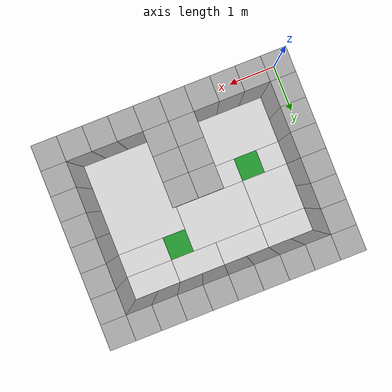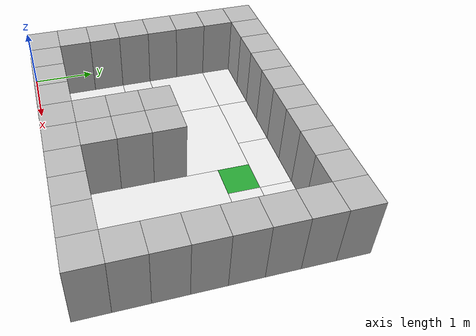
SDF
<sdf version="1.5">
  <model name="map">
    <static>1</static>
    <link name="map">
      <collision name="floor">
        <pose>2.5 2.0 -0.0625 0 0 0</pose>
        <geometry>
          <box>
            <size>5.0 4.0 0.125</size>
          </box>
        </geometry>
      </collision>
      <visual name="floor_0">
        <pose>1.25 1.0 -0.0625 0 0 0</pose>
        <geometry>
          <box>
            <size>1.5 1.0 0.125</size>
          </box>
        </geometry>
        <material>
          <script>
            <uri>file://media/materials/scripts/gazebo.material</uri>
            <name>Gazebo/White</name>
          </script>
        </material>
      </visual>
      <visual name="floor_1">
        <pose>1.0 3.25 -0.0625 0 0 0</pose>
        <geometry>
          <box>
            <size>1.0 0.5 0.125</size>
          </box>
        </geometry>
        <material>
          <script>
            <uri>file://media/materials/scripts/gazebo.material</uri>
            <name>Gazebo/White</name>
          </script>
        </material>
      </visual>
      <visual name="floor_2">
        <pose>2.0 3.25 -0.0625 0 0 0</pose>
        <geometry>
          <box>
            <size>1.0 0.5 0.125</size>
          </box>
        </geometry>
        <material>
          <script>
            <uri>file://media/materials/scripts/gazebo.material</uri>
            <name>Gazebo/White</name>
          </script>
        </material>
      </visual>
      <visual name="floor_3">
        <pose>3.0 3.25 -0.0625 0 0 0</pose>
        <geometry>
          <box>
            <size>1.0 0.5 0.125</size>
          </box>
        </geometry>
        <material>
          <script>
            <uri>file://media/materials/scripts/gazebo.material</uri>
            <name>Gazebo/White</name>
          </script>
        </material>
      </visual>
      <visual name="floor_4">
        <pose>4.0 3.25 -0.0625 0 0 0</pose>
        <geometry>
          <box>
            <size>1.0 0.5 0.125</size>
          </box>
        </geometry>
        <material>
          <script>
            <uri>file://media/materials/scripts/gazebo.material</uri>
            <name>Gazebo/White</name>
          </script>
        </material>
      </visual>
      <visual name="floor_5">
        <pose>3.75 1.5 -0.0625 0 0 0</pose>
        <geometry>
          <box>
            <size>1.5 2.0 0.125</size>
          </box>
        </geometry>
        <material>
          <script>
            <uri>file://media/materials/scripts/gazebo.material</uri>
            <name>Gazebo/White</name>
          </script>
        </material>
      </visual>
      <visual name="floor_6">
        <pose>1.0 2.5 -0.0625 0 0 0</pose>
        <geometry>
          <box>
            <size>1.0 1.0 0.125</size>
          </box>
        </geometry>
        <material>
          <script>
            <uri>file://media/materials/scripts/gazebo.material</uri>
            <name>Gazebo/White</name>
          </script>
        </material>
      </visual>
      <visual name="floor_7">
        <pose>2.25 2.5 -0.0625 0 0 0</pose>
        <geometry>
          <box>
            <size>1.5 1.0 0.125</size>
          </box>
        </geometry>
        <material>
          <script>
            <uri>file://media/materials/scripts/gazebo.material</uri>
            <name>Gazebo/White</name>
          </script>
        </material>
      </visual>
      <visual name="floor_8">
        <pose>1.75 1.75 -0.0625 0 0 0</pose>
        <geometry>
          <box>
            <size>0.5 0.5 0.125</size>
          </box>
        </geometry>
        <material>
          <script>
            <uri>file://media/materials/scripts/gazebo.material</uri>
            <name>Gazebo/White</name>
          </script>
        </material>
      </visual>
      <visual name="floor_9">
        <pose>0.75 1.75 -0.0625 0 0 0</pose>
        <geometry>
          <box>
            <size>0.5 0.5 0.125</size>
          </box>
        </geometry>
        <material>
          <script>
            <uri>file://media/materials/scripts/gazebo.material</uri>
            <name>Gazebo/White</name>
          </script>
        </material>
      </visual>
      <visual name="floor_10">
        <pose>4.0 2.75 -0.0625 0 0 0</pose>
        <geometry>
          <box>
            <size>1.0 0.5 0.125</size>
          </box>
        </geometry>
        <material>
          <script>
            <uri>file://media/materials/scripts/gazebo.material</uri>
            <name>Gazebo/White</name>
          </script>
        </material>
      </visual>
      <visual name="floor_target_0">
        <pose>1.25 1.75 -0.0625 0 0 0</pose>
        <geometry>
          <box>
            <size>0.5 0.5 0.125</size>
          </box>
        </geometry>
        <material>
          <script>
            <uri>file://media/materials/scripts/gazebo.material</uri>
            <name>Gazebo/Green</name>
          </script>
        </material>
      </visual>
      <visual name="floor_target_1">
        <pose>3.25 2.75 -0.0625 0 0 0</pose>
        <geometry>
          <box>
            <size>0.5 0.5 0.125</size>
          </box>
        </geometry>
        <material>
          <script>
            <uri>file://media/materials/scripts/gazebo.material</uri>
            <name>Gazebo/Green</name>
          </script>
        </material>
      </visual>
      <collision name="box_0_0">
        <pose>0.25 0.25 0.5 0 0 0</pose>
        <geometry>
          <box>
            <size>0.5 0.5 1.0</size>
          </box>
        </geometry>
      </collision>
      <visual name="box_0_0">
        <pose>0.25 0.25 0.5 0 0 0</pose>
        <geometry>
          <box>
            <size>0.5 0.5 1.0</size>
          </box>
        </geometry>
      </visual>
      <collision name="box_0_1">
        <pose>0.25 0.75 0.5 0 0 0</pose>
        <geometry>
          <box>
            <size>0.5 0.5 1.0</size>
          </box>
        </geometry>
      </collision>
      <visual name="box_0_1">
        <pose>0.25 0.75 0.5 0 0 0</pose>
        <geometry>
          <box>
            <size>0.5 0.5 1.0</size>
          </box>
        </geometry>
      </visual>
      <collision name="box_0_2">
        <pose>0.25 1.25 0.5 0 0 0</pose>
        <geometry>
          <box>
            <size>0.5 0.5 1.0</size>
          </box>
        </geometry>
      </collision>
      <visual name="box_0_2">
        <pose>0.25 1.25 0.5 0 0 0</pose>
        <geometry>
          <box>
            <size>0.5 0.5 1.0</size>
          </box>
        </geometry>
      </visual>
      <collision name="box_0_3">
        <pose>0.25 1.75 0.5 0 0 0</pose>
        <geometry>
          <box>
            <size>0.5 0.5 1.0</size>
          </box>
        </geometry>
      </collision>
      <visual name="box_0_3">
        <pose>0.25 1.75 0.5 0 0 0</pose>
        <geometry>
          <box>
            <size>0.5 0.5 1.0</size>
          </box>
        </geometry>
      </visual>
      <collision name="box_0_4">
        <pose>0.25 2.25 0.5 0 0 0</pose>
        <geometry>
          <box>
            <size>0.5 0.5 1.0</size>
          </box>
        </geometry>
      </collision>
      <visual name="box_0_4">
        <pose>0.25 2.25 0.5 0 0 0</pose>
        <geometry>
          <box>
            <size>0.5 0.5 1.0</size>
          </box>
        </geometry>
      </visual>
      <collision name="box_0_5">
        <pose>0.25 2.75 0.5 0 0 0</pose>
        <geometry>
          <box>
            <size>0.5 0.5 1.0</size>
          </box>
        </geometry>
      </collision>
      <visual name="box_0_5">
        <pose>0.25 2.75 0.5 0 0 0</pose>
        <geometry>
          <box>
            <size>0.5 0.5 1.0</size>
          </box>
        </geometry>
      </visual>
      <collision name="box_0_6">
        <pose>0.25 3.25 0.5 0 0 0</pose>
        <geometry>
          <box>
            <size>0.5 0.5 1.0</size>
          </box>
        </geometry>
      </collision>
      <visual name="box_0_6">
        <pose>0.25 3.25 0.5 0 0 0</pose>
        <geometry>
          <box>
            <size>0.5 0.5 1.0</size>
          </box>
        </geometry>
      </visual>
      <collision name="box_0_7">
        <pose>0.25 3.75 0.5 0 0 0</pose>
        <geometry>
          <box>
            <size>0.5 0.5 1.0</size>
          </box>
        </geometry>
      </collision>
      <visual name="box_0_7">
        <pose>0.25 3.75 0.5 0 0 0</pose>
        <geometry>
          <box>
            <size>0.5 0.5 1.0</size>
          </box>
        </geometry>
      </visual>
      <collision name="box_1_0">
        <pose>0.75 0.25 0.5 0 0 0</pose>
        <geometry>
          <box>
            <size>0.5 0.5 1.0</size>
          </box>
        </geometry>
      </collision>
      <visual name="box_1_0">
        <pose>0.75 0.25 0.5 0 0 0</pose>
        <geometry>
          <box>
            <size>0.5 0.5 1.0</size>
          </box>
        </geometry>
      </visual>
      <collision name="box_1_7">
        <pose>0.75 3.75 0.5 0 0 0</pose>
        <geometry>
          <box>
            <size>0.5 0.5 1.0</size>
          </box>
        </geometry>
      </collision>
      <visual name="box_1_7">
        <pose>0.75 3.75 0.5 0 0 0</pose>
        <geometry>
          <box>
            <size>0.5 0.5 1.0</size>
          </box>
        </geometry>
      </visual>
      <collision name="box_2_0">
        <pose>1.25 0.25 0.5 0 0 0</pose>
        <geometry>
          <box>
            <size>0.5 0.5 1.0</size>
          </box>
        </geometry>
      </collision>
      <visual name="box_2_0">
        <pose>1.25 0.25 0.5 0 0 0</pose>
        <geometry>
          <box>
            <size>0.5 0.5 1.0</size>
          </box>
        </geometry>
      </visual>
      <collision name="box_2_7">
        <pose>1.25 3.75 0.5 0 0 0</pose>
        <geometry>
          <box>
            <size>0.5 0.5 1.0</size>
          </box>
        </geometry>
      </collision>
      <visual name="box_2_7">
        <pose>1.25 3.75 0.5 0 0 0</pose>
        <geometry>
          <box>
            <size>0.5 0.5 1.0</size>
          </box>
        </geometry>
      </visual>
      <collision name="box_3_0">
        <pose>1.75 0.25 0.5 0 0 0</pose>
        <geometry>
          <box>
            <size>0.5 0.5 1.0</size>
          </box>
        </geometry>
      </collision>
      <visual name="box_3_0">
        <pose>1.75 0.25 0.5 0 0 0</pose>
        <geometry>
          <box>
            <size>0.5 0.5 1.0</size>
          </box>
        </geometry>
      </visual>
      <collision name="box_3_7">
        <pose>1.75 3.75 0.5 0 0 0</pose>
        <geometry>
          <box>
            <size>0.5 0.5 1.0</size>
          </box>
        </geometry>
      </collision>
      <visual name="box_3_7">
        <pose>1.75 3.75 0.5 0 0 0</pose>
        <geometry>
          <box>
            <size>0.5 0.5 1.0</size>
          </box>
        </geometry>
      </visual>
      <collision name="box_4_0">
        <pose>2.25 0.25 0.5 0 0 0</pose>
        <geometry>
          <box>
            <size>0.5 0.5 1.0</size>
          </box>
        </geometry>
      </collision>
      <visual name="box_4_0">
        <pose>2.25 0.25 0.5 0 0 0</pose>
        <geometry>
          <box>
            <size>0.5 0.5 1.0</size>
          </box>
        </geometry>
      </visual>
      <collision name="box_4_1">
        <pose>2.25 0.75 0.5 0 0 0</pose>
        <geometry>
          <box>
            <size>0.5 0.5 1.0</size>
          </box>
        </geometry>
      </collision>
      <visual name="box_4_1">
        <pose>2.25 0.75 0.5 0 0 0</pose>
        <geometry>
          <box>
            <size>0.5 0.5 1.0</size>
          </box>
        </geometry>
      </visual>
      <collision name="box_4_2">
        <pose>2.25 1.25 0.5 0 0 0</pose>
        <geometry>
          <box>
            <size>0.5 0.5 1.0</size>
          </box>
        </geometry>
      </collision>
      <visual name="box_4_2">
        <pose>2.25 1.25 0.5 0 0 0</pose>
        <geometry>
          <box>
            <size>0.5 0.5 1.0</size>
          </box>
        </geometry>
      </visual>
      <collision name="box_4_3">
        <pose>2.25 1.75 0.5 0 0 0</pose>
        <geometry>
          <box>
            <size>0.5 0.5 1.0</size>
          </box>
        </geometry>
      </collision>
      <visual name="box_4_3">
        <pose>2.25 1.75 0.5 0 0 0</pose>
        <geometry>
          <box>
            <size>0.5 0.5 1.0</size>
          </box>
        </geometry>
      </visual>
      <collision name="box_4_7">
        <pose>2.25 3.75 0.5 0 0 0</pose>
        <geometry>
          <box>
            <size>0.5 0.5 1.0</size>
          </box>
        </geometry>
      </collision>
      <visual name="box_4_7">
        <pose>2.25 3.75 0.5 0 0 0</pose>
        <geometry>
          <box>
            <size>0.5 0.5 1.0</size>
          </box>
        </geometry>
      </visual>
      <collision name="box_5_0">
        <pose>2.75 0.25 0.5 0 0 0</pose>
        <geometry>
          <box>
            <size>0.5 0.5 1.0</size>
          </box>
        </geometry>
      </collision>
      <visual name="box_5_0">
        <pose>2.75 0.25 0.5 0 0 0</pose>
        <geometry>
          <box>
            <size>0.5 0.5 1.0</size>
          </box>
        </geometry>
      </visual>
      <collision name="box_5_1">
        <pose>2.75 0.75 0.5 0 0 0</pose>
        <geometry>
          <box>
            <size>0.5 0.5 1.0</size>
          </box>
        </geometry>
      </collision>
      <visual name="box_5_1">
        <pose>2.75 0.75 0.5 0 0 0</pose>
        <geometry>
          <box>
            <size>0.5 0.5 1.0</size>
          </box>
        </geometry>
      </visual>
      <collision name="box_5_2">
        <pose>2.75 1.25 0.5 0 0 0</pose>
        <geometry>
          <box>
            <size>0.5 0.5 1.0</size>
          </box>
        </geometry>
      </collision>
      <visual name="box_5_2">
        <pose>2.75 1.25 0.5 0 0 0</pose>
        <geometry>
          <box>
            <size>0.5 0.5 1.0</size>
          </box>
        </geometry>
      </visual>
      <collision name="box_5_3">
        <pose>2.75 1.75 0.5 0 0 0</pose>
        <geometry>
          <box>
            <size>0.5 0.5 1.0</size>
          </box>
        </geometry>
      </collision>
      <visual name="box_5_3">
        <pose>2.75 1.75 0.5 0 0 0</pose>
        <geometry>
          <box>
            <size>0.5 0.5 1.0</size>
          </box>
        </geometry>
      </visual>
      <collision name="box_5_7">
        <pose>2.75 3.75 0.5 0 0 0</pose>
        <geometry>
          <box>
            <size>0.5 0.5 1.0</size>
          </box>
        </geometry>
      </collision>
      <visual name="box_5_7">
        <pose>2.75 3.75 0.5 0 0 0</pose>
        <geometry>
          <box>
            <size>0.5 0.5 1.0</size>
          </box>
        </geometry>
      </visual>
      <collision name="box_6_0">
        <pose>3.25 0.25 0.5 0 0 0</pose>
        <geometry>
          <box>
            <size>0.5 0.5 1.0</size>
          </box>
        </geometry>
      </collision>
      <visual name="box_6_0">
        <pose>3.25 0.25 0.5 0 0 0</pose>
        <geometry>
          <box>
            <size>0.5 0.5 1.0</size>
          </box>
        </geometry>
      </visual>
      <collision name="box_6_7">
        <pose>3.25 3.75 0.5 0 0 0</pose>
        <geometry>
          <box>
            <size>0.5 0.5 1.0</size>
          </box>
        </geometry>
      </collision>
      <visual name="box_6_7">
        <pose>3.25 3.75 0.5 0 0 0</pose>
        <geometry>
          <box>
            <size>0.5 0.5 1.0</size>
          </box>
        </geometry>
      </visual>
      <collision name="box_7_0">
        <pose>3.75 0.25 0.5 0 0 0</pose>
        <geometry>
          <box>
            <size>0.5 0.5 1.0</size>
          </box>
        </geometry>
      </collision>
      <visual name="box_7_0">
        <pose>3.75 0.25 0.5 0 0 0</pose>
        <geometry>
          <box>
            <size>0.5 0.5 1.0</size>
          </box>
        </geometry>
      </visual>
      <collision name="box_7_7">
        <pose>3.75 3.75 0.5 0 0 0</pose>
        <geometry>
          <box>
            <size>0.5 0.5 1.0</size>
          </box>
        </geometry>
      </collision>
      <visual name="box_7_7">
        <pose>3.75 3.75 0.5 0 0 0</pose>
        <geometry>
          <box>
            <size>0.5 0.5 1.0</size>
          </box>
        </geometry>
      </visual>
      <collision name="box_8_0">
        <pose>4.25 0.25 0.5 0 0 0</pose>
        <geometry>
          <box>
            <size>0.5 0.5 1.0</size>
          </box>
        </geometry>
      </collision>
      <visual name="box_8_0">
        <pose>4.25 0.25 0.5 0 0 0</pose>
        <geometry>
          <box>
            <size>0.5 0.5 1.0</size>
          </box>
        </geometry>
      </visual>
      <collision name="box_8_7">
        <pose>4.25 3.75 0.5 0 0 0</pose>
        <geometry>
          <box>
            <size>0.5 0.5 1.0</size>
          </box>
        </geometry>
      </collision>
      <visual name="box_8_7">
        <pose>4.25 3.75 0.5 0 0 0</pose>
        <geometry>
          <box>
            <size>0.5 0.5 1.0</size>
          </box>
        </geometry>
      </visual>
      <collision name="box_9_0">
        <pose>4.75 0.25 0.5 0 0 0</pose>
        <geometry>
          <box>
            <size>0.5 0.5 1.0</size>
          </box>
        </geometry>
      </collision>
      <visual name="box_9_0">
        <pose>4.75 0.25 0.5 0 0 0</pose>
        <geometry>
          <box>
            <size>0.5 0.5 1.0</size>
          </box>
        </geometry>
      </visual>
      <collision name="box_9_1">
        <pose>4.75 0.75 0.5 0 0 0</pose>
        <geometry>
          <box>
            <size>0.5 0.5 1.0</size>
          </box>
        </geometry>
      </collision>
      <visual name="box_9_1">
        <pose>4.75 0.75 0.5 0 0 0</pose>
        <geometry>
          <box>
            <size>0.5 0.5 1.0</size>
          </box>
        </geometry>
      </visual>
      <collision name="box_9_2">
        <pose>4.75 1.25 0.5 0 0 0</pose>
        <geometry>
          <box>
            <size>0.5 0.5 1.0</size>
          </box>
        </geometry>
      </collision>
      <visual name="box_9_2">
        <pose>4.75 1.25 0.5 0 0 0</pose>
        <geometry>
          <box>
            <size>0.5 0.5 1.0</size>
          </box>
        </geometry>
      </visual>
      <collision name="box_9_3">
        <pose>4.75 1.75 0.5 0 0 0</pose>
        <geometry>
          <box>
            <size>0.5 0.5 1.0</size>
          </box>
        </geometry>
      </collision>
      <visual name="box_9_3">
        <pose>4.75 1.75 0.5 0 0 0</pose>
        <geometry>
          <box>
            <size>0.5 0.5 1.0</size>
          </box>
        </geometry>
      </visual>
      <collision name="box_9_4">
        <pose>4.75 2.25 0.5 0 0 0</pose>
        <geometry>
          <box>
            <size>0.5 0.5 1.0</size>
          </box>
        </geometry>
      </collision>
      <visual name="box_9_4">
        <pose>4.75 2.25 0.5 0 0 0</pose>
        <geometry>
          <box>
            <size>0.5 0.5 1.0</size>
          </box>
        </geometry>
      </visual>
      <collision name="box_9_5">
        <pose>4.75 2.75 0.5 0 0 0</pose>
        <geometry>
          <box>
            <size>0.5 0.5 1.0</size>
          </box>
        </geometry>
      </collision>
      <visual name="box_9_5">
        <pose>4.75 2.75 0.5 0 0 0</pose>
        <geometry>
          <box>
            <size>0.5 0.5 1.0</size>
          </box>
        </geometry>
      </visual>
      <collision name="box_9_6">
        <pose>4.75 3.25 0.5 0 0 0</pose>
        <geometry>
          <box>
            <size>0.5 0.5 1.0</size>
          </box>
        </geometry>
      </collision>
      <visual name="box_9_6">
        <pose>4.75 3.25 0.5 0 0 0</pose>
        <geometry>
          <box>
            <size>0.5 0.5 1.0</size>
          </box>
        </geometry>
      </visual>
      <collision name="box_9_7">
        <pose>4.75 3.75 0.5 0 0 0</pose>
        <geometry>
          <box>
            <size>0.5 0.5 1.0</size>
          </box>
        </geometry>
      </collision>
      <visual name="box_9_7">
        <pose>4.75 3.75 0.5 0 0 0</pose>
        <geometry>
          <box>
            <size>0.5 0.5 1.0</size>
          </box>
        </geometry>
      </visual>
    </link>
  </model>
</sdf>
